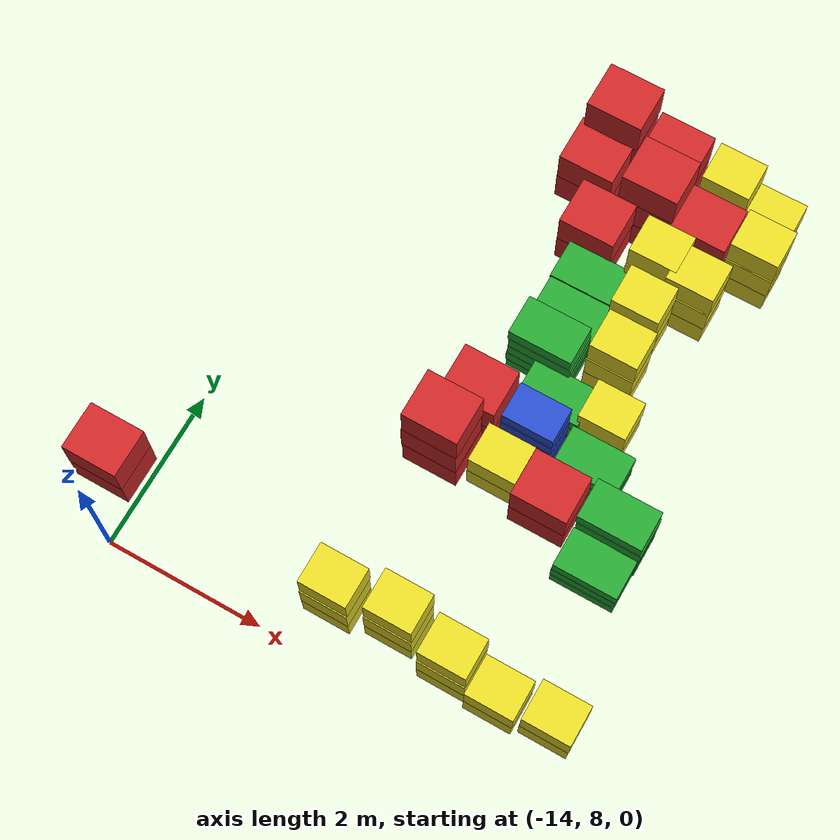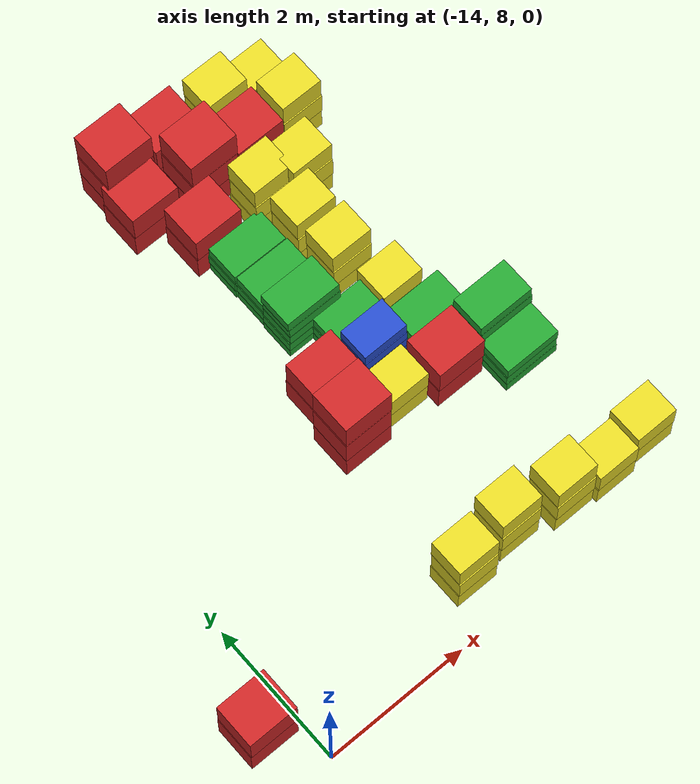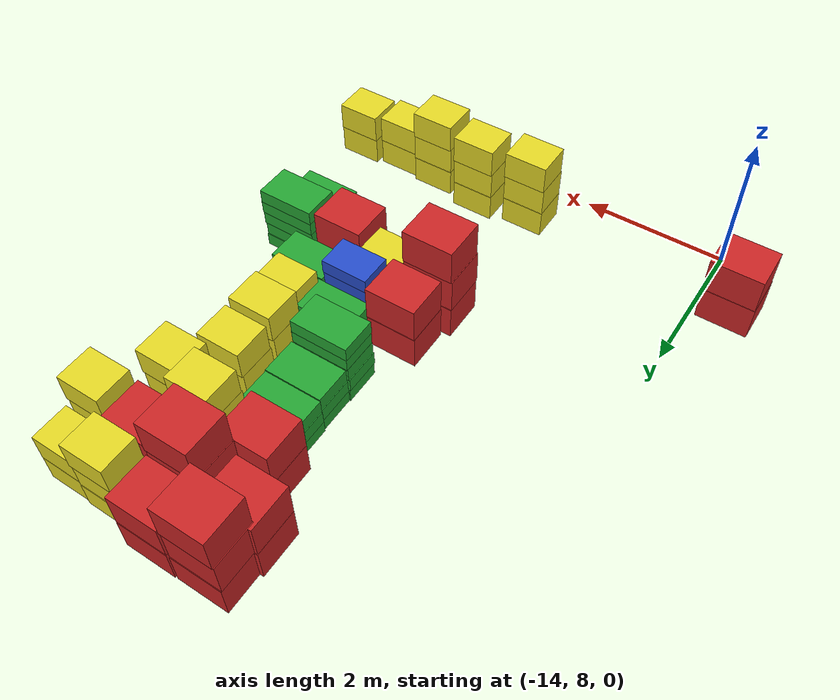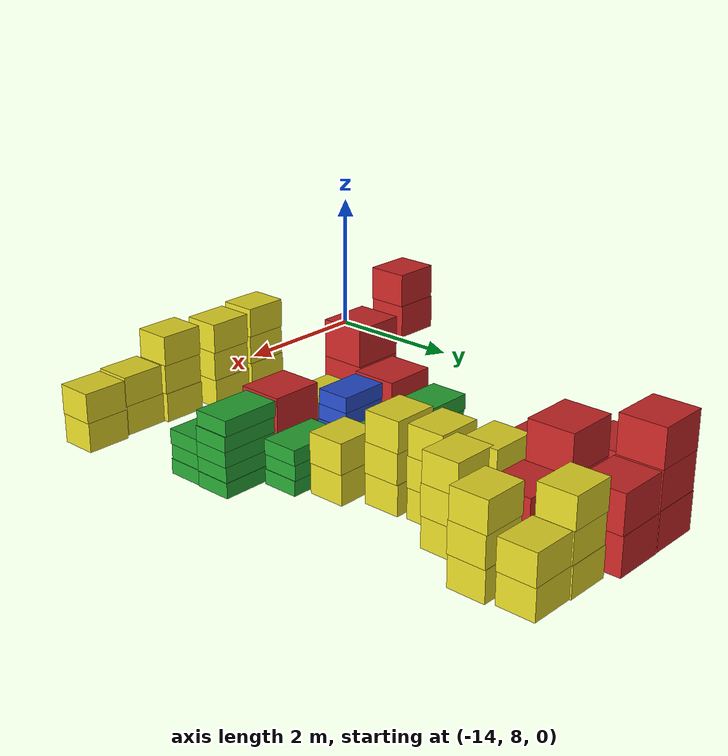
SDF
<sdf version="1.6">
 <world name="default">
  <include><uri>model://sun</uri></include>
  <model name="baggage_A_x2_5">
   <model name="baggage_A_0">
    <static>1</static>
    <link name="link">
     <collision name="collision"><geometry><box><size>0.7 0.6 0.5</size></box></geometry></collision>
     <visual name="visual">
      <geometry><box><size>0.7 0.6 0.5</size></box></geometry>
      <material>
       <script><uri>file://media/materials/scripts/gazebo.material</uri><name>Gazebo/Red</name></script>
      </material>
     </visual>
    </link>
    <pose>0 0 0.25 0 -0 0</pose>
   </model>
   <model name="baggage_A_1">
    <static>1</static>
    <link name="link">
     <collision name="collision"><geometry><box><size>0.7 0.6 0.5</size></box></geometry></collision>
     <visual name="visual">
      <geometry><box><size>0.7 0.6 0.5</size></box></geometry>
      <material>
       <script><uri>file://media/materials/scripts/gazebo.material</uri><name>Gazebo/Red</name></script>
      </material>
     </visual>
    </link>
    <pose>0.0063 -0.0062 0.75 0 -0 0</pose>
   </model>
   <pose>-14.4327 8.8006 0 0 -0 0</pose>
  </model>
  <model name="baggage_C_x3_16">
   <model name="baggage_C_0">
    <static>1</static>
    <link name="link">
     <collision name="collision"><geometry><box><size>0.6 0.5 0.4</size></box></geometry></collision>
     <visual name="visual">
      <geometry><box><size>0.6 0.5 0.4</size></box></geometry>
      <material>
       <script><uri>file://media/materials/scripts/gazebo.material</uri><name>Gazebo/Yellow</name></script>
      </material>
     </visual>
    </link>
    <pose>0 0 0.2 0 -0 0</pose>
   </model>
   <model name="baggage_C_1">
    <static>1</static>
    <link name="link">
     <collision name="collision"><geometry><box><size>0.6 0.5 0.4</size></box></geometry></collision>
     <visual name="visual">
      <geometry><box><size>0.6 0.5 0.4</size></box></geometry>
      <material>
       <script><uri>file://media/materials/scripts/gazebo.material</uri><name>Gazebo/Yellow</name></script>
      </material>
     </visual>
    </link>
    <pose>0.0062 -0.0069 0.6 0 -0 0</pose>
   </model>
   <model name="baggage_C_2">
    <static>1</static>
    <link name="link">
     <collision name="collision"><geometry><box><size>0.6 0.5 0.4</size></box></geometry></collision>
     <visual name="visual">
      <geometry><box><size>0.6 0.5 0.4</size></box></geometry>
      <material>
       <script><uri>file://media/materials/scripts/gazebo.material</uri><name>Gazebo/Yellow</name></script>
      </material>
     </visual>
    </link>
    <pose>0.0089 0.0083 1 0 -0 0</pose>
   </model>
   <pose>-11.3899 8.67797 0 0 -0 0</pose>
  </model>
  <model name="baggage_C_x3_19">
   <model name="baggage_C_0">
    <static>1</static>
    <link name="link">
     <collision name="collision"><geometry><box><size>0.6 0.5 0.4</size></box></geometry></collision>
     <visual name="visual">
      <geometry><box><size>0.6 0.5 0.4</size></box></geometry>
      <material>
       <script><uri>file://media/materials/scripts/gazebo.material</uri><name>Gazebo/Yellow</name></script>
      </material>
     </visual>
    </link>
    <pose>0 0 0.2 0 -0 0</pose>
   </model>
   <model name="baggage_C_1">
    <static>1</static>
    <link name="link">
     <collision name="collision"><geometry><box><size>0.6 0.5 0.4</size></box></geometry></collision>
     <visual name="visual">
      <geometry><box><size>0.6 0.5 0.4</size></box></geometry>
      <material>
       <script><uri>file://media/materials/scripts/gazebo.material</uri><name>Gazebo/Yellow</name></script>
      </material>
     </visual>
    </link>
    <pose>0.0062 -0.0069 0.6 0 -0 0</pose>
   </model>
   <model name="baggage_C_2">
    <static>1</static>
    <link name="link">
     <collision name="collision"><geometry><box><size>0.6 0.5 0.4</size></box></geometry></collision>
     <visual name="visual">
      <geometry><box><size>0.6 0.5 0.4</size></box></geometry>
      <material>
       <script><uri>file://media/materials/scripts/gazebo.material</uri><name>Gazebo/Yellow</name></script>
      </material>
     </visual>
    </link>
    <pose>0.0089 0.0083 1 0 -0 0</pose>
   </model>
   <pose>-10.6422 8.77616 0 0 -0 0</pose>
  </model>
  <model name="baggage_C_x3_21">
   <model name="baggage_C_0">
    <static>1</static>
    <link name="link">
     <collision name="collision"><geometry><box><size>0.6 0.5 0.4</size></box></geometry></collision>
     <visual name="visual">
      <geometry><box><size>0.6 0.5 0.4</size></box></geometry>
      <material>
       <script><uri>file://media/materials/scripts/gazebo.material</uri><name>Gazebo/Yellow</name></script>
      </material>
     </visual>
    </link>
    <pose>0 0 0.2 0 -0 0</pose>
   </model>
   <model name="baggage_C_1">
    <static>1</static>
    <link name="link">
     <collision name="collision"><geometry><box><size>0.6 0.5 0.4</size></box></geometry></collision>
     <visual name="visual">
      <geometry><box><size>0.6 0.5 0.4</size></box></geometry>
      <material>
       <script><uri>file://media/materials/scripts/gazebo.material</uri><name>Gazebo/Yellow</name></script>
      </material>
     </visual>
    </link>
    <pose>0.0062 -0.0069 0.6 0 -0 0</pose>
   </model>
   <model name="baggage_C_2">
    <static>1</static>
    <link name="link">
     <collision name="collision"><geometry><box><size>0.6 0.5 0.4</size></box></geometry></collision>
     <visual name="visual">
      <geometry><box><size>0.6 0.5 0.4</size></box></geometry>
      <material>
       <script><uri>file://media/materials/scripts/gazebo.material</uri><name>Gazebo/Yellow</name></script>
      </material>
     </visual>
    </link>
    <pose>0.0089 0.0083 1 0 -0 0</pose>
   </model>
   <pose>-9.90095 8.6419 0 0 -0 0</pose>
  </model>
  <model name="baggage_C_x2_20">
   <model name="baggage_C_0">
    <static>1</static>
    <link name="link">
     <collision name="collision"><geometry><box><size>0.6 0.5 0.4</size></box></geometry></collision>
     <visual name="visual">
      <geometry><box><size>0.6 0.5 0.4</size></box></geometry>
      <material>
       <script><uri>file://media/materials/scripts/gazebo.material</uri><name>Gazebo/Yellow</name></script>
      </material>
     </visual>
    </link>
    <pose>0 0 0.2 0 -0 0</pose>
   </model>
   <model name="baggage_C_1">
    <static>1</static>
    <link name="link">
     <collision name="collision"><geometry><box><size>0.6 0.5 0.4</size></box></geometry></collision>
     <visual name="visual">
      <geometry><box><size>0.6 0.5 0.4</size></box></geometry>
      <material>
       <script><uri>file://media/materials/scripts/gazebo.material</uri><name>Gazebo/Yellow</name></script>
      </material>
     </visual>
    </link>
    <pose>0.0093 -0.002 0.6 0 -0 0</pose>
   </model>
   <pose>-9.28245 8.58367 0 0 -0 0</pose>
  </model>
  <model name="baggage_C_x2_21">
   <model name="baggage_C_0">
    <static>1</static>
    <link name="link">
     <collision name="collision"><geometry><box><size>0.6 0.5 0.4</size></box></geometry></collision>
     <visual name="visual">
      <geometry><box><size>0.6 0.5 0.4</size></box></geometry>
      <material>
       <script><uri>file://media/materials/scripts/gazebo.material</uri><name>Gazebo/Yellow</name></script>
      </material>
     </visual>
    </link>
    <pose>0 0 0.2 0 -0 0</pose>
   </model>
   <model name="baggage_C_1">
    <static>1</static>
    <link name="link">
     <collision name="collision"><geometry><box><size>0.6 0.5 0.4</size></box></geometry></collision>
     <visual name="visual">
      <geometry><box><size>0.6 0.5 0.4</size></box></geometry>
      <material>
       <script><uri>file://media/materials/scripts/gazebo.material</uri><name>Gazebo/Yellow</name></script>
      </material>
     </visual>
    </link>
    <pose>0.0093 -0.002 0.6 0 -0 0</pose>
   </model>
   <pose>-8.62419 8.64939 0 0 -0 0</pose>
  </model>
  <model name="baggage_A_x3_13">
   <model name="baggage_A_0">
    <static>1</static>
    <link name="link">
     <collision name="collision"><geometry><box><size>0.7 0.6 0.5</size></box></geometry></collision>
     <visual name="visual">
      <geometry><box><size>0.7 0.6 0.5</size></box></geometry>
      <material>
       <script><uri>file://media/materials/scripts/gazebo.material</uri><name>Gazebo/Red</name></script>
      </material>
     </visual>
    </link>
    <pose>0 0 0.25 0 -0 0</pose>
   </model>
   <model name="baggage_A_1">
    <static>1</static>
    <link name="link">
     <collision name="collision"><geometry><box><size>0.7 0.6 0.5</size></box></geometry></collision>
     <visual name="visual">
      <geometry><box><size>0.7 0.6 0.5</size></box></geometry>
      <material>
       <script><uri>file://media/materials/scripts/gazebo.material</uri><name>Gazebo/Red</name></script>
      </material>
     </visual>
    </link>
    <pose>-0.006 -0.0077 0.75 0 -0 0</pose>
   </model>
   <model name="baggage_A_2">
    <static>1</static>
    <link name="link">
     <collision name="collision"><geometry><box><size>0.7 0.6 0.5</size></box></geometry></collision>
     <visual name="visual">
      <geometry><box><size>0.7 0.6 0.5</size></box></geometry>
      <material>
       <script><uri>file://media/materials/scripts/gazebo.material</uri><name>Gazebo/Red</name></script>
      </material>
     </visual>
    </link>
    <pose>0.0045 0.0005 1.25 0 -0 0</pose>
   </model>
   <pose>-11.2629 10.8297 0 0 -0 0</pose>
  </model>
  <model name="baggage_A_x2_12">
   <model name="baggage_A_0">
    <static>1</static>
    <link name="link">
     <collision name="collision"><geometry><box><size>0.7 0.6 0.5</size></box></geometry></collision>
     <visual name="visual">
      <geometry><box><size>0.7 0.6 0.5</size></box></geometry>
      <material>
       <script><uri>file://media/materials/scripts/gazebo.material</uri><name>Gazebo/Red</name></script>
      </material>
     </visual>
    </link>
    <pose>0 0 0.25 0 -0 0</pose>
   </model>
   <model name="baggage_A_1">
    <static>1</static>
    <link name="link">
     <collision name="collision"><geometry><box><size>0.7 0.6 0.5</size></box></geometry></collision>
     <visual name="visual">
      <geometry><box><size>0.7 0.6 0.5</size></box></geometry>
      <material>
       <script><uri>file://media/materials/scripts/gazebo.material</uri><name>Gazebo/Red</name></script>
      </material>
     </visual>
    </link>
    <pose>0.0063 -0.0062 0.75 0 -0 0</pose>
   </model>
   <pose>-11.1491 11.4753 0 0 -0 0</pose>
  </model>
  <model name="baggage_C_x2_25">
   <model name="baggage_C_0">
    <static>1</static>
    <link name="link">
     <collision name="collision"><geometry><box><size>0.6 0.5 0.4</size></box></geometry></collision>
     <visual name="visual">
      <geometry><box><size>0.6 0.5 0.4</size></box></geometry>
      <material>
       <script><uri>file://media/materials/scripts/gazebo.material</uri><name>Gazebo/Yellow</name></script>
      </material>
     </visual>
    </link>
    <pose>0 0 0.2 0 -0 0</pose>
   </model>
   <model name="baggage_C_1">
    <static>1</static>
    <link name="link">
     <collision name="collision"><geometry><box><size>0.6 0.5 0.4</size></box></geometry></collision>
     <visual name="visual">
      <geometry><box><size>0.6 0.5 0.4</size></box></geometry>
      <material>
       <script><uri>file://media/materials/scripts/gazebo.material</uri><name>Gazebo/Yellow</name></script>
      </material>
     </visual>
    </link>
    <pose>0.0093 -0.002 0.6 0 -0 0</pose>
   </model>
   <pose>-10.5378 10.897 0 0 -0 0</pose>
  </model>
  <model name="baggage_B_x5_16">
   <model name="baggage_B_0">
    <static>1</static>
    <link name="link">
     <collision name="collision"><geometry><box><size>0.65 0.45 0.2</size></box></geometry></collision>
     <visual name="visual">
      <geometry><box><size>0.65 0.45 0.2</size></box></geometry>
      <material>
       <script><uri>file://media/materials/scripts/gazebo.material</uri><name>Gazebo/Blue</name></script>
      </material>
     </visual>
    </link>
    <pose>0 0 0.1 0 -0 0</pose>
   </model>
   <model name="baggage_B_1">
    <static>1</static>
    <link name="link">
     <collision name="collision"><geometry><box><size>0.65 0.45 0.2</size></box></geometry></collision>
     <visual name="visual">
      <geometry><box><size>0.65 0.45 0.2</size></box></geometry>
      <material>
       <script><uri>file://media/materials/scripts/gazebo.material</uri><name>Gazebo/Blue</name></script>
      </material>
     </visual>
    </link>
    <pose>-0.0014 -0.0091 0.3 0 -0 0</pose>
   </model>
   <model name="baggage_B_2">
    <static>1</static>
    <link name="link">
     <collision name="collision"><geometry><box><size>0.65 0.45 0.2</size></box></geometry></collision>
     <visual name="visual">
      <geometry><box><size>0.65 0.45 0.2</size></box></geometry>
      <material>
       <script><uri>file://media/materials/scripts/gazebo.material</uri><name>Gazebo/Blue</name></script>
      </material>
     </visual>
    </link>
    <pose>0.0076 -0.0066 0.5 0 -0 0</pose>
   </model>
   <model name="baggage_B_3">
    <static>1</static>
    <link name="link">
     <collision name="collision"><geometry><box><size>0.65 0.45 0.2</size></box></geometry></collision>
     <visual name="visual">
      <geometry><box><size>0.65 0.45 0.2</size></box></geometry>
      <material>
       <script><uri>file://media/materials/scripts/gazebo.material</uri><name>Gazebo/Blue</name></script>
      </material>
     </visual>
    </link>
    <pose>0 -0.0032 0.7 0 -0 0</pose>
   </model>
   <model name="baggage_B_4">
    <static>1</static>
    <link name="link">
     <collision name="collision"><geometry><box><size>0.65 0.45 0.2</size></box></geometry></collision>
     <visual name="visual">
      <geometry><box><size>0.65 0.45 0.2</size></box></geometry>
      <material>
       <script><uri>file://media/materials/scripts/gazebo.material</uri><name>Gazebo/Blue</name></script>
      </material>
     </visual>
    </link>
    <pose>0.0023 0.0073 0.9 0 -0 0</pose>
   </model>
   <pose>-10.4028 11.4394 0 0 -0 0</pose>
  </model>
  <model name="baggage_A_x2_13">
   <model name="baggage_A_0">
    <static>1</static>
    <link name="link">
     <collision name="collision"><geometry><box><size>0.7 0.6 0.5</size></box></geometry></collision>
     <visual name="visual">
      <geometry><box><size>0.7 0.6 0.5</size></box></geometry>
      <material>
       <script><uri>file://media/materials/scripts/gazebo.material</uri><name>Gazebo/Red</name></script>
      </material>
     </visual>
    </link>
    <pose>0 0 0.25 0 -0 0</pose>
   </model>
   <model name="baggage_A_1">
    <static>1</static>
    <link name="link">
     <collision name="collision"><geometry><box><size>0.7 0.6 0.5</size></box></geometry></collision>
     <visual name="visual">
      <geometry><box><size>0.7 0.6 0.5</size></box></geometry>
      <material>
       <script><uri>file://media/materials/scripts/gazebo.material</uri><name>Gazebo/Red</name></script>
      </material>
     </visual>
    </link>
    <pose>0.0063 -0.0062 0.75 0 -0 0</pose>
   </model>
   <pose>-9.85833 10.7808 0 0 -0 0</pose>
  </model>
  <model name="baggage_D_x3_10">
   <model name="baggage_D_0">
    <static>1</static>
    <link name="link">
     <collision name="collision"><geometry><box><size>0.8 0.5 0.2</size></box></geometry></collision>
     <visual name="visual">
      <geometry><box><size>0.8 0.5 0.2</size></box></geometry>
      <material>
       <script><uri>file://media/materials/scripts/gazebo.material</uri><name>Gazebo/Green</name></script>
      </material>
     </visual>
    </link>
    <pose>0 0 0.1 0 -0 0</pose>
   </model>
   <model name="baggage_D_1">
    <static>1</static>
    <link name="link">
     <collision name="collision"><geometry><box><size>0.8 0.5 0.2</size></box></geometry></collision>
     <visual name="visual">
      <geometry><box><size>0.8 0.5 0.2</size></box></geometry>
      <material>
       <script><uri>file://media/materials/scripts/gazebo.material</uri><name>Gazebo/Green</name></script>
      </material>
     </visual>
    </link>
    <pose>-0.0056 0.0083 0.3 0 -0 0</pose>
   </model>
   <model name="baggage_D_2">
    <static>1</static>
    <link name="link">
     <collision name="collision"><geometry><box><size>0.8 0.5 0.2</size></box></geometry></collision>
     <visual name="visual">
      <geometry><box><size>0.8 0.5 0.2</size></box></geometry>
      <material>
       <script><uri>file://media/materials/scripts/gazebo.material</uri><name>Gazebo/Green</name></script>
      </material>
     </visual>
    </link>
    <pose>0.0053 0.0057 0.5 0 -0 0</pose>
   </model>
   <pose>-9.61937 11.3897 0 0 -0 0</pose>
  </model>
  <model name="baggage_D_x5_10">
   <model name="baggage_D_0">
    <static>1</static>
    <link name="link">
     <collision name="collision"><geometry><box><size>0.8 0.5 0.2</size></box></geometry></collision>
     <visual name="visual">
      <geometry><box><size>0.8 0.5 0.2</size></box></geometry>
      <material>
       <script><uri>file://media/materials/scripts/gazebo.material</uri><name>Gazebo/Green</name></script>
      </material>
     </visual>
    </link>
    <pose>0 0 0.1 0 -0 0</pose>
   </model>
   <model name="baggage_D_1">
    <static>1</static>
    <link name="link">
     <collision name="collision"><geometry><box><size>0.8 0.5 0.2</size></box></geometry></collision>
     <visual name="visual">
      <geometry><box><size>0.8 0.5 0.2</size></box></geometry>
      <material>
       <script><uri>file://media/materials/scripts/gazebo.material</uri><name>Gazebo/Green</name></script>
      </material>
     </visual>
    </link>
    <pose>-0.0065 -0.0092 0.3 0 -0 0</pose>
   </model>
   <model name="baggage_D_2">
    <static>1</static>
    <link name="link">
     <collision name="collision"><geometry><box><size>0.8 0.5 0.2</size></box></geometry></collision>
     <visual name="visual">
      <geometry><box><size>0.8 0.5 0.2</size></box></geometry>
      <material>
       <script><uri>file://media/materials/scripts/gazebo.material</uri><name>Gazebo/Green</name></script>
      </material>
     </visual>
    </link>
    <pose>0.005 -0.0052 0.5 0 -0 0</pose>
   </model>
   <model name="baggage_D_3">
    <static>1</static>
    <link name="link">
     <collision name="collision"><geometry><box><size>0.8 0.5 0.2</size></box></geometry></collision>
     <visual name="visual">
      <geometry><box><size>0.8 0.5 0.2</size></box></geometry>
      <material>
       <script><uri>file://media/materials/scripts/gazebo.material</uri><name>Gazebo/Green</name></script>
      </material>
     </visual>
    </link>
    <pose>0.0074 0.0002 0.7 0 -0 0</pose>
   </model>
   <model name="baggage_D_4">
    <static>1</static>
    <link name="link">
     <collision name="collision"><geometry><box><size>0.8 0.5 0.2</size></box></geometry></collision>
     <visual name="visual">
      <geometry><box><size>0.8 0.5 0.2</size></box></geometry>
      <material>
       <script><uri>file://media/materials/scripts/gazebo.material</uri><name>Gazebo/Green</name></script>
      </material>
     </visual>
    </link>
    <pose>-0.006 0.0081 0.9 0 -0 0</pose>
   </model>
   <pose>-9.03759 10.8483 0 0 -0 0</pose>
  </model>
  <model name="baggage_D_x3_11">
   <model name="baggage_D_0">
    <static>1</static>
    <link name="link">
     <collision name="collision"><geometry><box><size>0.8 0.5 0.2</size></box></geometry></collision>
     <visual name="visual">
      <geometry><box><size>0.8 0.5 0.2</size></box></geometry>
      <material>
       <script><uri>file://media/materials/scripts/gazebo.material</uri><name>Gazebo/Green</name></script>
      </material>
     </visual>
    </link>
    <pose>0 0 0.1 0 -0 0</pose>
   </model>
   <model name="baggage_D_1">
    <static>1</static>
    <link name="link">
     <collision name="collision"><geometry><box><size>0.8 0.5 0.2</size></box></geometry></collision>
     <visual name="visual">
      <geometry><box><size>0.8 0.5 0.2</size></box></geometry>
      <material>
       <script><uri>file://media/materials/scripts/gazebo.material</uri><name>Gazebo/Green</name></script>
      </material>
     </visual>
    </link>
    <pose>-0.0056 0.0083 0.3 0 -0 0</pose>
   </model>
   <model name="baggage_D_2">
    <static>1</static>
    <link name="link">
     <collision name="collision"><geometry><box><size>0.8 0.5 0.2</size></box></geometry></collision>
     <visual name="visual">
      <geometry><box><size>0.8 0.5 0.2</size></box></geometry>
      <material>
       <script><uri>file://media/materials/scripts/gazebo.material</uri><name>Gazebo/Green</name></script>
      </material>
     </visual>
    </link>
    <pose>0.0053 0.0057 0.5 0 -0 0</pose>
   </model>
   <pose>-9.05099 10.3453 0 0 -0 0</pose>
  </model>
  <model name="baggage_A_x2_28">
   <model name="baggage_A_0">
    <static>1</static>
    <link name="link">
     <collision name="collision"><geometry><box><size>0.7 0.6 0.5</size></box></geometry></collision>
     <visual name="visual">
      <geometry><box><size>0.7 0.6 0.5</size></box></geometry>
      <material>
       <script><uri>file://media/materials/scripts/gazebo.material</uri><name>Gazebo/Red</name></script>
      </material>
     </visual>
    </link>
    <pose>0 0 0.25 0 -0 0</pose>
   </model>
   <model name="baggage_A_1">
    <static>1</static>
    <link name="link">
     <collision name="collision"><geometry><box><size>0.7 0.6 0.5</size></box></geometry></collision>
     <visual name="visual">
      <geometry><box><size>0.7 0.6 0.5</size></box></geometry>
      <material>
       <script><uri>file://media/materials/scripts/gazebo.material</uri><name>Gazebo/Red</name></script>
      </material>
     </visual>
    </link>
    <pose>0.0063 -0.0062 0.75 0 -0 0</pose>
   </model>
   <pose>-11.3518 14.6733 0 0 -0 0</pose>
  </model>
  <model name="baggage_A_x3_27">
   <model name="baggage_A_0">
    <static>1</static>
    <link name="link">
     <collision name="collision"><geometry><box><size>0.7 0.6 0.5</size></box></geometry></collision>
     <visual name="visual">
      <geometry><box><size>0.7 0.6 0.5</size></box></geometry>
      <material>
       <script><uri>file://media/materials/scripts/gazebo.material</uri><name>Gazebo/Red</name></script>
      </material>
     </visual>
    </link>
    <pose>0 0 0.25 0 -0 0</pose>
   </model>
   <model name="baggage_A_1">
    <static>1</static>
    <link name="link">
     <collision name="collision"><geometry><box><size>0.7 0.6 0.5</size></box></geometry></collision>
     <visual name="visual">
      <geometry><box><size>0.7 0.6 0.5</size></box></geometry>
      <material>
       <script><uri>file://media/materials/scripts/gazebo.material</uri><name>Gazebo/Red</name></script>
      </material>
     </visual>
    </link>
    <pose>-0.006 -0.0077 0.75 0 -0 0</pose>
   </model>
   <model name="baggage_A_2">
    <static>1</static>
    <link name="link">
     <collision name="collision"><geometry><box><size>0.7 0.6 0.5</size></box></geometry></collision>
     <visual name="visual">
      <geometry><box><size>0.7 0.6 0.5</size></box></geometry>
      <material>
       <script><uri>file://media/materials/scripts/gazebo.material</uri><name>Gazebo/Red</name></script>
      </material>
     </visual>
    </link>
    <pose>0.0045 0.0005 1.25 0 -0 0</pose>
   </model>
   <pose>-11.2994 15.1834 0 0 -0 0</pose>
  </model>
  <model name="baggage_A_x2_29">
   <model name="baggage_A_0">
    <static>1</static>
    <link name="link">
     <collision name="collision"><geometry><box><size>0.7 0.6 0.5</size></box></geometry></collision>
     <visual name="visual">
      <geometry><box><size>0.7 0.6 0.5</size></box></geometry>
      <material>
       <script><uri>file://media/materials/scripts/gazebo.material</uri><name>Gazebo/Red</name></script>
      </material>
     </visual>
    </link>
    <pose>0 0 0.25 0 -0 0</pose>
   </model>
   <model name="baggage_A_1">
    <static>1</static>
    <link name="link">
     <collision name="collision"><geometry><box><size>0.7 0.6 0.5</size></box></geometry></collision>
     <visual name="visual">
      <geometry><box><size>0.7 0.6 0.5</size></box></geometry>
      <material>
       <script><uri>file://media/materials/scripts/gazebo.material</uri><name>Gazebo/Red</name></script>
      </material>
     </visual>
    </link>
    <pose>0.0063 -0.0062 0.75 0 -0 0</pose>
   </model>
   <pose>-10.5679 15.1891 0 0 -0 0</pose>
  </model>
  <model name="baggage_A_x3_28">
   <model name="baggage_A_0">
    <static>1</static>
    <link name="link">
     <collision name="collision"><geometry><box><size>0.7 0.6 0.5</size></box></geometry></collision>
     <visual name="visual">
      <geometry><box><size>0.7 0.6 0.5</size></box></geometry>
      <material>
       <script><uri>file://media/materials/scripts/gazebo.material</uri><name>Gazebo/Red</name></script>
      </material>
     </visual>
    </link>
    <pose>0 0 0.25 0 -0 0</pose>
   </model>
   <model name="baggage_A_1">
    <static>1</static>
    <link name="link">
     <collision name="collision"><geometry><box><size>0.7 0.6 0.5</size></box></geometry></collision>
     <visual name="visual">
      <geometry><box><size>0.7 0.6 0.5</size></box></geometry>
      <material>
       <script><uri>file://media/materials/scripts/gazebo.material</uri><name>Gazebo/Red</name></script>
      </material>
     </visual>
    </link>
    <pose>-0.006 -0.0077 0.75 0 -0 0</pose>
   </model>
   <model name="baggage_A_2">
    <static>1</static>
    <link name="link">
     <collision name="collision"><geometry><box><size>0.7 0.6 0.5</size></box></geometry></collision>
     <visual name="visual">
      <geometry><box><size>0.7 0.6 0.5</size></box></geometry>
      <material>
       <script><uri>file://media/materials/scripts/gazebo.material</uri><name>Gazebo/Red</name></script>
      </material>
     </visual>
    </link>
    <pose>0.0045 0.0005 1.25 0 -0 0</pose>
   </model>
   <pose>-10.5086 14.5494 0 0 -0 0</pose>
  </model>
  <model name="baggage_C_x3_33">
   <model name="baggage_C_0">
    <static>1</static>
    <link name="link">
     <collision name="collision"><geometry><box><size>0.6 0.5 0.4</size></box></geometry></collision>
     <visual name="visual">
      <geometry><box><size>0.6 0.5 0.4</size></box></geometry>
      <material>
       <script><uri>file://media/materials/scripts/gazebo.material</uri><name>Gazebo/Yellow</name></script>
      </material>
     </visual>
    </link>
    <pose>0 0 0.2 0 -0 0</pose>
   </model>
   <model name="baggage_C_1">
    <static>1</static>
    <link name="link">
     <collision name="collision"><geometry><box><size>0.6 0.5 0.4</size></box></geometry></collision>
     <visual name="visual">
      <geometry><box><size>0.6 0.5 0.4</size></box></geometry>
      <material>
       <script><uri>file://media/materials/scripts/gazebo.material</uri><name>Gazebo/Yellow</name></script>
      </material>
     </visual>
    </link>
    <pose>0.0062 -0.0069 0.6 0 -0 0</pose>
   </model>
   <model name="baggage_C_2">
    <static>1</static>
    <link name="link">
     <collision name="collision"><geometry><box><size>0.6 0.5 0.4</size></box></geometry></collision>
     <visual name="visual">
      <geometry><box><size>0.6 0.5 0.4</size></box></geometry>
      <material>
       <script><uri>file://media/materials/scripts/gazebo.material</uri><name>Gazebo/Yellow</name></script>
      </material>
     </visual>
    </link>
    <pose>0.0089 0.0083 1 0 -0 0</pose>
   </model>
   <pose>-9.80919 15.0964 0 0 -0 0</pose>
  </model>
  <model name="baggage_C_x2_34">
   <model name="baggage_C_0">
    <static>1</static>
    <link name="link">
     <collision name="collision"><geometry><box><size>0.6 0.5 0.4</size></box></geometry></collision>
     <visual name="visual">
      <geometry><box><size>0.6 0.5 0.4</size></box></geometry>
      <material>
       <script><uri>file://media/materials/scripts/gazebo.material</uri><name>Gazebo/Yellow</name></script>
      </material>
     </visual>
    </link>
    <pose>0 0 0.2 0 -0 0</pose>
   </model>
   <model name="baggage_C_1">
    <static>1</static>
    <link name="link">
     <collision name="collision"><geometry><box><size>0.6 0.5 0.4</size></box></geometry></collision>
     <visual name="visual">
      <geometry><box><size>0.6 0.5 0.4</size></box></geometry>
      <material>
       <script><uri>file://media/materials/scripts/gazebo.material</uri><name>Gazebo/Yellow</name></script>
      </material>
     </visual>
    </link>
    <pose>0.0093 -0.002 0.6 0 -0 0</pose>
   </model>
   <pose>-9.20665 15.0784 0 0 -0 0</pose>
  </model>
  <model name="baggage_A_x2_30">
   <model name="baggage_A_0">
    <static>1</static>
    <link name="link">
     <collision name="collision"><geometry><box><size>0.7 0.6 0.5</size></box></geometry></collision>
     <visual name="visual">
      <geometry><box><size>0.7 0.6 0.5</size></box></geometry>
      <material>
       <script><uri>file://media/materials/scripts/gazebo.material</uri><name>Gazebo/Red</name></script>
      </material>
     </visual>
    </link>
    <pose>0 0 0.25 0 -0 0</pose>
   </model>
   <model name="baggage_A_1">
    <static>1</static>
    <link name="link">
     <collision name="collision"><geometry><box><size>0.7 0.6 0.5</size></box></geometry></collision>
     <visual name="visual">
      <geometry><box><size>0.7 0.6 0.5</size></box></geometry>
      <material>
       <script><uri>file://media/materials/scripts/gazebo.material</uri><name>Gazebo/Red</name></script>
      </material>
     </visual>
    </link>
    <pose>0.0063 -0.0062 0.75 0 -0 0</pose>
   </model>
   <pose>-9.81686 14.5279 0 0 -0 0</pose>
  </model>
  <model name="baggage_C_x3_34">
   <model name="baggage_C_0">
    <static>1</static>
    <link name="link">
     <collision name="collision"><geometry><box><size>0.6 0.5 0.4</size></box></geometry></collision>
     <visual name="visual">
      <geometry><box><size>0.6 0.5 0.4</size></box></geometry>
      <material>
       <script><uri>file://media/materials/scripts/gazebo.material</uri><name>Gazebo/Yellow</name></script>
      </material>
     </visual>
    </link>
    <pose>0 0 0.2 0 -0 0</pose>
   </model>
   <model name="baggage_C_1">
    <static>1</static>
    <link name="link">
     <collision name="collision"><geometry><box><size>0.6 0.5 0.4</size></box></geometry></collision>
     <visual name="visual">
      <geometry><box><size>0.6 0.5 0.4</size></box></geometry>
      <material>
       <script><uri>file://media/materials/scripts/gazebo.material</uri><name>Gazebo/Yellow</name></script>
      </material>
     </visual>
    </link>
    <pose>0.0062 -0.0069 0.6 0 -0 0</pose>
   </model>
   <model name="baggage_C_2">
    <static>1</static>
    <link name="link">
     <collision name="collision"><geometry><box><size>0.6 0.5 0.4</size></box></geometry></collision>
     <visual name="visual">
      <geometry><box><size>0.6 0.5 0.4</size></box></geometry>
      <material>
       <script><uri>file://media/materials/scripts/gazebo.material</uri><name>Gazebo/Yellow</name></script>
      </material>
     </visual>
    </link>
    <pose>0.0089 0.0083 1 0 -0 0</pose>
   </model>
   <pose>-9.14038 14.4972 0 0 -0 0</pose>
  </model>
  <model name="baggage_A_x2_31">
   <model name="baggage_A_0">
    <static>1</static>
    <link name="link">
     <collision name="collision"><geometry><box><size>0.7 0.6 0.5</size></box></geometry></collision>
     <visual name="visual">
      <geometry><box><size>0.7 0.6 0.5</size></box></geometry>
      <material>
       <script><uri>file://media/materials/scripts/gazebo.material</uri><name>Gazebo/Red</name></script>
      </material>
     </visual>
    </link>
    <pose>0 0 0.25 0 -0 0</pose>
   </model>
   <model name="baggage_A_1">
    <static>1</static>
    <link name="link">
     <collision name="collision"><geometry><box><size>0.7 0.6 0.5</size></box></geometry></collision>
     <visual name="visual">
      <geometry><box><size>0.7 0.6 0.5</size></box></geometry>
      <material>
       <script><uri>file://media/materials/scripts/gazebo.material</uri><name>Gazebo/Red</name></script>
      </material>
     </visual>
    </link>
    <pose>0.0063 -0.0062 0.75 0 -0 0</pose>
   </model>
   <pose>-10.9635 13.9549 0 0 -0 0</pose>
  </model>
  <model name="baggage_C_x3_35">
   <model name="baggage_C_0">
    <static>1</static>
    <link name="link">
     <collision name="collision"><geometry><box><size>0.6 0.5 0.4</size></box></geometry></collision>
     <visual name="visual">
      <geometry><box><size>0.6 0.5 0.4</size></box></geometry>
      <material>
       <script><uri>file://media/materials/scripts/gazebo.material</uri><name>Gazebo/Yellow</name></script>
      </material>
     </visual>
    </link>
    <pose>0 0 0.2 0 -0 0</pose>
   </model>
   <model name="baggage_C_1">
    <static>1</static>
    <link name="link">
     <collision name="collision"><geometry><box><size>0.6 0.5 0.4</size></box></geometry></collision>
     <visual name="visual">
      <geometry><box><size>0.6 0.5 0.4</size></box></geometry>
      <material>
       <script><uri>file://media/materials/scripts/gazebo.material</uri><name>Gazebo/Yellow</name></script>
      </material>
     </visual>
    </link>
    <pose>0.0062 -0.0069 0.6 0 -0 0</pose>
   </model>
   <model name="baggage_C_2">
    <static>1</static>
    <link name="link">
     <collision name="collision"><geometry><box><size>0.6 0.5 0.4</size></box></geometry></collision>
     <visual name="visual">
      <geometry><box><size>0.6 0.5 0.4</size></box></geometry>
      <material>
       <script><uri>file://media/materials/scripts/gazebo.material</uri><name>Gazebo/Yellow</name></script>
      </material>
     </visual>
    </link>
    <pose>0.0089 0.0083 1 0 -0 0</pose>
   </model>
   <pose>-10.1155 13.8686 0 0 -0 0</pose>
  </model>
  <model name="baggage_D_x3_37">
   <model name="baggage_D_0">
    <static>1</static>
    <link name="link">
     <collision name="collision"><geometry><box><size>0.8 0.5 0.2</size></box></geometry></collision>
     <visual name="visual">
      <geometry><box><size>0.8 0.5 0.2</size></box></geometry>
      <material>
       <script><uri>file://media/materials/scripts/gazebo.material</uri><name>Gazebo/Green</name></script>
      </material>
     </visual>
    </link>
    <pose>0 0 0.1 0 -0 0</pose>
   </model>
   <model name="baggage_D_1">
    <static>1</static>
    <link name="link">
     <collision name="collision"><geometry><box><size>0.8 0.5 0.2</size></box></geometry></collision>
     <visual name="visual">
      <geometry><box><size>0.8 0.5 0.2</size></box></geometry>
      <material>
       <script><uri>file://media/materials/scripts/gazebo.material</uri><name>Gazebo/Green</name></script>
      </material>
     </visual>
    </link>
    <pose>-0.0056 0.0083 0.3 0 -0 0</pose>
   </model>
   <model name="baggage_D_2">
    <static>1</static>
    <link name="link">
     <collision name="collision"><geometry><box><size>0.8 0.5 0.2</size></box></geometry></collision>
     <visual name="visual">
      <geometry><box><size>0.8 0.5 0.2</size></box></geometry>
      <material>
       <script><uri>file://media/materials/scripts/gazebo.material</uri><name>Gazebo/Green</name></script>
      </material>
     </visual>
    </link>
    <pose>0.0053 0.0057 0.5 0 -0 0</pose>
   </model>
   <pose>-10.7396 13.3958 0 0 -0 0</pose>
  </model>
  <model name="baggage_D_x3_38">
   <model name="baggage_D_0">
    <static>1</static>
    <link name="link">
     <collision name="collision"><geometry><box><size>0.8 0.5 0.2</size></box></geometry></collision>
     <visual name="visual">
      <geometry><box><size>0.8 0.5 0.2</size></box></geometry>
      <material>
       <script><uri>file://media/materials/scripts/gazebo.material</uri><name>Gazebo/Green</name></script>
      </material>
     </visual>
    </link>
    <pose>0 0 0.1 0 -0 0</pose>
   </model>
   <model name="baggage_D_1">
    <static>1</static>
    <link name="link">
     <collision name="collision"><geometry><box><size>0.8 0.5 0.2</size></box></geometry></collision>
     <visual name="visual">
      <geometry><box><size>0.8 0.5 0.2</size></box></geometry>
      <material>
       <script><uri>file://media/materials/scripts/gazebo.material</uri><name>Gazebo/Green</name></script>
      </material>
     </visual>
    </link>
    <pose>-0.0056 0.0083 0.3 0 -0 0</pose>
   </model>
   <model name="baggage_D_2">
    <static>1</static>
    <link name="link">
     <collision name="collision"><geometry><box><size>0.8 0.5 0.2</size></box></geometry></collision>
     <visual name="visual">
      <geometry><box><size>0.8 0.5 0.2</size></box></geometry>
      <material>
       <script><uri>file://media/materials/scripts/gazebo.material</uri><name>Gazebo/Green</name></script>
      </material>
     </visual>
    </link>
    <pose>0.0053 0.0057 0.5 0 -0 0</pose>
   </model>
   <pose>-10.7241 12.8847 0 0 -0 0</pose>
  </model>
  <model name="baggage_D_x5_19">
   <model name="baggage_D_0">
    <static>1</static>
    <link name="link">
     <collision name="collision"><geometry><box><size>0.8 0.5 0.2</size></box></geometry></collision>
     <visual name="visual">
      <geometry><box><size>0.8 0.5 0.2</size></box></geometry>
      <material>
       <script><uri>file://media/materials/scripts/gazebo.material</uri><name>Gazebo/Green</name></script>
      </material>
     </visual>
    </link>
    <pose>0 0 0.1 0 -0 0</pose>
   </model>
   <model name="baggage_D_1">
    <static>1</static>
    <link name="link">
     <collision name="collision"><geometry><box><size>0.8 0.5 0.2</size></box></geometry></collision>
     <visual name="visual">
      <geometry><box><size>0.8 0.5 0.2</size></box></geometry>
      <material>
       <script><uri>file://media/materials/scripts/gazebo.material</uri><name>Gazebo/Green</name></script>
      </material>
     </visual>
    </link>
    <pose>-0.0065 -0.0092 0.3 0 -0 0</pose>
   </model>
   <model name="baggage_D_2">
    <static>1</static>
    <link name="link">
     <collision name="collision"><geometry><box><size>0.8 0.5 0.2</size></box></geometry></collision>
     <visual name="visual">
      <geometry><box><size>0.8 0.5 0.2</size></box></geometry>
      <material>
       <script><uri>file://media/materials/scripts/gazebo.material</uri><name>Gazebo/Green</name></script>
      </material>
     </visual>
    </link>
    <pose>0.005 -0.0052 0.5 0 -0 0</pose>
   </model>
   <model name="baggage_D_3">
    <static>1</static>
    <link name="link">
     <collision name="collision"><geometry><box><size>0.8 0.5 0.2</size></box></geometry></collision>
     <visual name="visual">
      <geometry><box><size>0.8 0.5 0.2</size></box></geometry>
      <material>
       <script><uri>file://media/materials/scripts/gazebo.material</uri><name>Gazebo/Green</name></script>
      </material>
     </visual>
    </link>
    <pose>0.0074 0.0002 0.7 0 -0 0</pose>
   </model>
   <model name="baggage_D_4">
    <static>1</static>
    <link name="link">
     <collision name="collision"><geometry><box><size>0.8 0.5 0.2</size></box></geometry></collision>
     <visual name="visual">
      <geometry><box><size>0.8 0.5 0.2</size></box></geometry>
      <material>
       <script><uri>file://media/materials/scripts/gazebo.material</uri><name>Gazebo/Green</name></script>
      </material>
     </visual>
    </link>
    <pose>-0.006 0.0081 0.9 0 -0 0</pose>
   </model>
   <pose>-10.739 12.3817 0 0 -0 0</pose>
  </model>
  <model name="baggage_D_x3_39">
   <model name="baggage_D_0">
    <static>1</static>
    <link name="link">
     <collision name="collision"><geometry><box><size>0.8 0.5 0.2</size></box></geometry></collision>
     <visual name="visual">
      <geometry><box><size>0.8 0.5 0.2</size></box></geometry>
      <material>
       <script><uri>file://media/materials/scripts/gazebo.material</uri><name>Gazebo/Green</name></script>
      </material>
     </visual>
    </link>
    <pose>0 0 0.1 0 -0 0</pose>
   </model>
   <model name="baggage_D_1">
    <static>1</static>
    <link name="link">
     <collision name="collision"><geometry><box><size>0.8 0.5 0.2</size></box></geometry></collision>
     <visual name="visual">
      <geometry><box><size>0.8 0.5 0.2</size></box></geometry>
      <material>
       <script><uri>file://media/materials/scripts/gazebo.material</uri><name>Gazebo/Green</name></script>
      </material>
     </visual>
    </link>
    <pose>-0.0056 0.0083 0.3 0 -0 0</pose>
   </model>
   <model name="baggage_D_2">
    <static>1</static>
    <link name="link">
     <collision name="collision"><geometry><box><size>0.8 0.5 0.2</size></box></geometry></collision>
     <visual name="visual">
      <geometry><box><size>0.8 0.5 0.2</size></box></geometry>
      <material>
       <script><uri>file://media/materials/scripts/gazebo.material</uri><name>Gazebo/Green</name></script>
      </material>
     </visual>
    </link>
    <pose>0.0053 0.0057 0.5 0 -0 0</pose>
   </model>
   <pose>-10.3756 11.902 0 0 -0 0</pose>
  </model>
  <model name="baggage_C_x2_36">
   <model name="baggage_C_0">
    <static>1</static>
    <link name="link">
     <collision name="collision"><geometry><box><size>0.6 0.5 0.4</size></box></geometry></collision>
     <visual name="visual">
      <geometry><box><size>0.6 0.5 0.4</size></box></geometry>
      <material>
       <script><uri>file://media/materials/scripts/gazebo.material</uri><name>Gazebo/Yellow</name></script>
      </material>
     </visual>
    </link>
    <pose>0 0 0.2 0 -0 0</pose>
   </model>
   <model name="baggage_C_1">
    <static>1</static>
    <link name="link">
     <collision name="collision"><geometry><box><size>0.6 0.5 0.4</size></box></geometry></collision>
     <visual name="visual">
      <geometry><box><size>0.6 0.5 0.4</size></box></geometry>
      <material>
       <script><uri>file://media/materials/scripts/gazebo.material</uri><name>Gazebo/Yellow</name></script>
      </material>
     </visual>
    </link>
    <pose>0.0093 -0.002 0.6 0 -0 0</pose>
   </model>
   <pose>-9.71615 11.9631 0 0 -0 0</pose>
  </model>
  <model name="baggage_C_x3_37">
   <model name="baggage_C_0">
    <static>1</static>
    <link name="link">
     <collision name="collision"><geometry><box><size>0.6 0.5 0.4</size></box></geometry></collision>
     <visual name="visual">
      <geometry><box><size>0.6 0.5 0.4</size></box></geometry>
      <material>
       <script><uri>file://media/materials/scripts/gazebo.material</uri><name>Gazebo/Yellow</name></script>
      </material>
     </visual>
    </link>
    <pose>0 0 0.2 0 -0 0</pose>
   </model>
   <model name="baggage_C_1">
    <static>1</static>
    <link name="link">
     <collision name="collision"><geometry><box><size>0.6 0.5 0.4</size></box></geometry></collision>
     <visual name="visual">
      <geometry><box><size>0.6 0.5 0.4</size></box></geometry>
      <material>
       <script><uri>file://media/materials/scripts/gazebo.material</uri><name>Gazebo/Yellow</name></script>
      </material>
     </visual>
    </link>
    <pose>0.0062 -0.0069 0.6 0 -0 0</pose>
   </model>
   <model name="baggage_C_2">
    <static>1</static>
    <link name="link">
     <collision name="collision"><geometry><box><size>0.6 0.5 0.4</size></box></geometry></collision>
     <visual name="visual">
      <geometry><box><size>0.6 0.5 0.4</size></box></geometry>
      <material>
       <script><uri>file://media/materials/scripts/gazebo.material</uri><name>Gazebo/Yellow</name></script>
      </material>
     </visual>
    </link>
    <pose>0.0089 0.0083 1 0 -0 0</pose>
   </model>
   <pose>-9.95646 12.6113 0 0 -0 0</pose>
  </model>
  <model name="baggage_C_x3_38">
   <model name="baggage_C_0">
    <static>1</static>
    <link name="link">
     <collision name="collision"><geometry><box><size>0.6 0.5 0.4</size></box></geometry></collision>
     <visual name="visual">
      <geometry><box><size>0.6 0.5 0.4</size></box></geometry>
      <material>
       <script><uri>file://media/materials/scripts/gazebo.material</uri><name>Gazebo/Yellow</name></script>
      </material>
     </visual>
    </link>
    <pose>0 0 0.2 0 -0 0</pose>
   </model>
   <model name="baggage_C_1">
    <static>1</static>
    <link name="link">
     <collision name="collision"><geometry><box><size>0.6 0.5 0.4</size></box></geometry></collision>
     <visual name="visual">
      <geometry><box><size>0.6 0.5 0.4</size></box></geometry>
      <material>
       <script><uri>file://media/materials/scripts/gazebo.material</uri><name>Gazebo/Yellow</name></script>
      </material>
     </visual>
    </link>
    <pose>0.0062 -0.0069 0.6 0 -0 0</pose>
   </model>
   <model name="baggage_C_2">
    <static>1</static>
    <link name="link">
     <collision name="collision"><geometry><box><size>0.6 0.5 0.4</size></box></geometry></collision>
     <visual name="visual">
      <geometry><box><size>0.6 0.5 0.4</size></box></geometry>
      <material>
       <script><uri>file://media/materials/scripts/gazebo.material</uri><name>Gazebo/Yellow</name></script>
      </material>
     </visual>
    </link>
    <pose>0.0089 0.0083 1 0 -0 0</pose>
   </model>
   <pose>-10.001 13.2135 0 0 -0 0</pose>
  </model>
  <model name="baggage_C_x3_39">
   <model name="baggage_C_0">
    <static>1</static>
    <link name="link">
     <collision name="collision"><geometry><box><size>0.6 0.5 0.4</size></box></geometry></collision>
     <visual name="visual">
      <geometry><box><size>0.6 0.5 0.4</size></box></geometry>
      <material>
       <script><uri>file://media/materials/scripts/gazebo.material</uri><name>Gazebo/Yellow</name></script>
      </material>
     </visual>
    </link>
    <pose>0 0 0.2 0 -0 0</pose>
   </model>
   <model name="baggage_C_1">
    <static>1</static>
    <link name="link">
     <collision name="collision"><geometry><box><size>0.6 0.5 0.4</size></box></geometry></collision>
     <visual name="visual">
      <geometry><box><size>0.6 0.5 0.4</size></box></geometry>
      <material>
       <script><uri>file://media/materials/scripts/gazebo.material</uri><name>Gazebo/Yellow</name></script>
      </material>
     </visual>
    </link>
    <pose>0.0062 -0.0069 0.6 0 -0 0</pose>
   </model>
   <model name="baggage_C_2">
    <static>1</static>
    <link name="link">
     <collision name="collision"><geometry><box><size>0.6 0.5 0.4</size></box></geometry></collision>
     <visual name="visual">
      <geometry><box><size>0.6 0.5 0.4</size></box></geometry>
      <material>
       <script><uri>file://media/materials/scripts/gazebo.material</uri><name>Gazebo/Yellow</name></script>
      </material>
     </visual>
    </link>
    <pose>0.0089 0.0083 1 0 -0 0</pose>
   </model>
   <pose>-9.59122 13.761 0 0 -0 0</pose>
  </model>
 </world>
</sdf>
